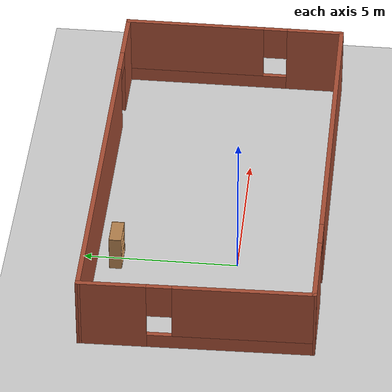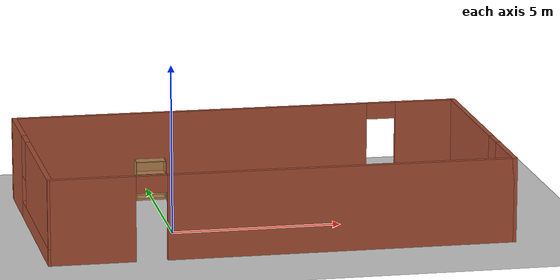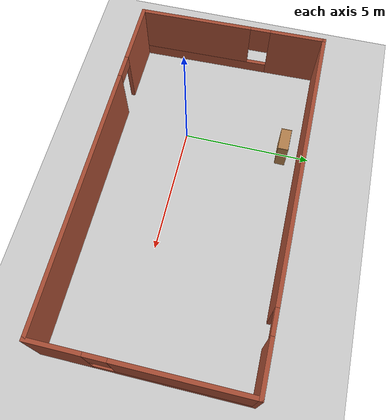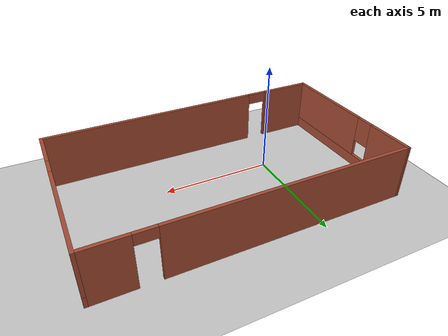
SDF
<sdf version="1.7">
 <world name="default">
  <light name="sun" type="directional">
   <pose>0 0 10 0 -0 0</pose>
   <diffuse>0.8 0.8 0.8 1</diffuse>
   <specular>0.2 0.2 0.2 1</specular>
   <attenuation>
    <range>1000</range>
    <constant>0.9</constant>
    <linear>0.01</linear>
    <quadratic>0.001</quadratic>
   </attenuation>
   <direction>-0.5 0.1 -0.9</direction>
   <spot><inner_angle>0</inner_angle><outer_angle>0</outer_angle><falloff>0</falloff></spot>
  </light>
  <model name="ground_plane">
   <static>1</static>
   <link name="link">
    <collision name="collision">
     <geometry><plane><normal>0 0 1</normal><size>100 100</size></plane></geometry>
     <surface>
      <contact><collide_bitmask>65535</collide_bitmask></contact>
      <friction><ode><mu>100</mu><mu2>50</mu2></ode></friction>
     </surface>
    </collision>
    <visual name="visual">
     <cast_shadows>0</cast_shadows>
     <geometry><plane><normal>0 0 1</normal><size>100 100</size></plane></geometry>
     <material>
      <script><uri>file://media/materials/scripts/gazebo.material</uri><name>Gazebo/Grey</name></script>
     </material>
    </visual>
   </link>
  </model>
  <gravity>0 0 -9.8</gravity>
  <magnetic_field>6e-06 2.3e-05 -4.2e-05</magnetic_field>
  <atmosphere type="adiabatic"/>
  <physics type="ode">
   <max_step_size>0.001</max_step_size>
   <real_time_factor>1</real_time_factor>
   <real_time_update_rate>1000</real_time_update_rate>
  </physics>
  <scene><ambient>0.4 0.4 0.4 1</ambient><background>0.7 0.7 0.7 1</background><shadows>1</shadows></scene>
  <audio><device>default</device></audio>
  <spherical_coordinates>
   <surface_model>EARTH_WGS84</surface_model>
   <latitude_deg>0</latitude_deg>
   <longitude_deg>0</longitude_deg>
   <elevation>0</elevation>
   <heading_deg>0</heading_deg>
  </spherical_coordinates>
  <model name="bookshelf">
   <static>1</static>
   <link name="link">
    <inertial><mass>1</mass></inertial>
    <collision name="back">
     <pose>0 0.005 0.6 0 -0 0</pose>
     <geometry><box><size>0.9 0.01 1.2</size></box></geometry>
    </collision>
    <visual name="visual1">
     <pose>0 0.005 0.6 0 -0 0</pose>
     <geometry><box><size>0.9 0.01 1.2</size></box></geometry>
     <material>
      <script><uri>file://media/materials/scripts/gazebo.material</uri><name>Gazebo/Wood</name></script>
     </material>
    </visual>
    <collision name="left_side">
     <pose>0.45 -0.195 0.6 0 -0 0</pose>
     <geometry><box><size>0.02 0.4 1.2</size></box></geometry>
    </collision>
    <visual name="visual2">
     <pose>0.45 -0.195 0.6 0 -0 0</pose>
     <geometry><box><size>0.02 0.4 1.2</size></box></geometry>
     <material>
      <script><uri>file://media/materials/scripts/gazebo.material</uri><name>Gazebo/Wood</name></script>
     </material>
    </visual>
    <collision name="right_side">
     <pose>-0.45 -0.195 0.6 0 -0 0</pose>
     <geometry><box><size>0.02 0.4 1.2</size></box></geometry>
    </collision>
    <visual name="visual3">
     <pose>-0.45 -0.195 0.6 0 -0 0</pose>
     <geometry><box><size>0.02 0.4 1.2</size></box></geometry>
     <material>
      <script><uri>file://media/materials/scripts/gazebo.material</uri><name>Gazebo/Wood</name></script>
     </material>
    </visual>
    <collision name="bottom">
     <pose>0 -0.195 0.03 0 -0 0</pose>
     <geometry><box><size>0.88 0.4 0.06</size></box></geometry>
    </collision>
    <visual name="visual4">
     <pose>0 -0.195 0.03 0 -0 0</pose>
     <geometry><box><size>0.88 0.4 0.06</size></box></geometry>
     <material>
      <script><uri>file://media/materials/scripts/gazebo.material</uri><name>Gazebo/Wood</name></script>
     </material>
    </visual>
    <collision name="top">
     <pose>0 -0.195 1.19 0 -0 0</pose>
     <geometry><box><size>0.88 0.4 0.02</size></box></geometry>
    </collision>
    <visual name="visual5">
     <pose>0 -0.195 1.19 0 -0 0</pose>
     <geometry><box><size>0.88 0.4 0.02</size></box></geometry>
     <material>
      <script><uri>file://media/materials/scripts/gazebo.material</uri><name>Gazebo/Wood</name></script>
     </material>
    </visual>
    <collision name="low_shelf">
     <pose>0 -0.195 0.43 0 -0 0</pose>
     <geometry><box><size>0.88 0.4 0.02</size></box></geometry>
    </collision>
    <visual name="visual6">
     <pose>0 -0.195 0.43 0 -0 0</pose>
     <geometry><box><size>0.88 0.4 0.02</size></box></geometry>
     <material>
      <script><uri>file://media/materials/scripts/gazebo.material</uri><name>Gazebo/Wood</name></script>
     </material>
    </visual>
    <collision name="high_shelf">
     <pose>0 -0.195 0.8 0 -0 0</pose>
     <geometry><box><size>0.88 0.4 0.02</size></box></geometry>
    </collision>
    <visual name="visual7">
     <pose>0 -0.195 0.8 0 -0 0</pose>
     <geometry><box><size>0.88 0.4 0.02</size></box></geometry>
     <material>
      <script><uri>file://media/materials/scripts/gazebo.material</uri><name>Gazebo/Wood</name></script>
     </material>
    </visual>
   </link>
   <pose>-0.039505 4.10756 0 0 -0 0</pose>
  </model>
  <model name="beer">
   <link name="link">
    <pose>0 0 0.115 0 -0 0</pose>
    <inertial>
     <mass>0.39</mass>
     <inertia><ixx>0.00058</ixx><ixy>0</ixy><ixz>0</ixz><iyy>0.00058</iyy><iyz>0</iyz><izz>0.00019</izz></inertia>
    </inertial>
    <collision name="collision">
     <geometry><cylinder><radius>0.055</radius><length>0.23</length></cylinder></geometry>
    </collision>
    <visual name="visual">
     <geometry><cylinder><radius>0.055</radius><length>0.23</length></cylinder></geometry>
     <material>
      <script>
       <uri>model://beer/materials/scripts</uri>
       <uri>model://beer/materials/textures</uri>
       <name>Beer/Diffuse</name>
      </script>
     </material>
    </visual>
   </link>
   <pose>-0.151651 3.807 0.440002 2.7e-05 1.7e-05 0.000711</pose>
  </model>
  <model name="Test">
   <pose>2.74014 0.95241 0 0 -0 0</pose>
   <link name="Wall_2">
    <pose>0.025757 -3.675 0 0 -0 0</pose>
    <visual name="Wall_2_Visual_0">
     <pose>-5.4921 0 1.25 0 -0 0</pose>
     <geometry><box><size>2.51579 0.15 2.5</size></box></geometry>
     <material>
      <script><uri>file://media/materials/scripts/gazebo.material</uri><name>Gazebo/Bricks</name></script>
      <ambient>1 1 1 1</ambient>
     </material>
     <meta><layer>0</layer></meta>
    </visual>
    <collision name="Wall_2_Collision_0">
     <geometry><box><size>2.51579 0.15 2.5</size></box></geometry>
     <pose>-5.4921 0 1.25 0 -0 0</pose>
    </collision>
    <visual name="Wall_2_Visual_1">
     <pose>1.70789 0 1.25 0 -0 0</pose>
     <geometry><box><size>10.0842 0.15 2.5</size></box></geometry>
     <material>
      <script><uri>file://media/materials/scripts/gazebo.material</uri><name>Gazebo/Bricks</name></script>
      <ambient>1 1 1 1</ambient>
     </material>
     <meta><layer>0</layer></meta>
    </visual>
    <collision name="Wall_2_Collision_1">
     <geometry><box><size>10.0842 0.15 2.5</size></box></geometry>
     <pose>1.70789 0 1.25 0 -0 0</pose>
    </collision>
    <visual name="Wall_2_Visual_2">
     <pose>-3.78421 0 2.25 0 -0 0</pose>
     <geometry><box><size>0.9 0.15 0.5</size></box></geometry>
     <material>
      <script><uri>file://media/materials/scripts/gazebo.material</uri><name>Gazebo/Bricks</name></script>
      <ambient>1 1 1 1</ambient>
     </material>
     <meta><layer>0</layer></meta>
    </visual>
    <collision name="Wall_2_Collision_2">
     <geometry><box><size>0.9 0.15 0.5</size></box></geometry>
     <pose>-3.78421 0 2.25 0 -0 0</pose>
    </collision>
   </link>
   <link name="Wall_5">
    <pose>6.80076 -0 0 0 -0 1.5708</pose>
    <visual name="Wall_5_Visual_0">
     <pose>-2.779 0 1.25 0 -0 0</pose>
     <geometry><box><size>1.942 0.15 2.5</size></box></geometry>
     <material>
      <script><uri>file://media/materials/scripts/gazebo.material</uri><name>Gazebo/Bricks</name></script>
      <ambient>1 1 1 1</ambient>
     </material>
     <meta><layer>0</layer></meta>
    </visual>
    <collision name="Wall_5_Collision_0">
     <geometry><box><size>1.942 0.15 2.5</size></box></geometry>
     <pose>-2.779 0 1.25 0 -0 0</pose>
    </collision>
    <visual name="Wall_5_Visual_1">
     <pose>0.971 0 0.25 0 -0 0</pose>
     <geometry><box><size>5.558 0.15 0.5</size></box></geometry>
     <material>
      <script><uri>file://media/materials/scripts/gazebo.material</uri><name>Gazebo/Bricks</name></script>
      <ambient>1 1 1 1</ambient>
     </material>
     <meta><layer>0</layer></meta>
    </visual>
    <collision name="Wall_5_Collision_1">
     <geometry><box><size>5.558 0.15 0.5</size></box></geometry>
     <pose>0.971 0 0.25 0 -0 0</pose>
    </collision>
    <visual name="Wall_5_Visual_2">
     <pose>1.371 0 1.5 0 -0 0</pose>
     <geometry><box><size>4.758 0.15 2</size></box></geometry>
     <material>
      <script><uri>file://media/materials/scripts/gazebo.material</uri><name>Gazebo/Bricks</name></script>
      <ambient>1 1 1 1</ambient>
     </material>
     <meta><layer>0</layer></meta>
    </visual>
    <collision name="Wall_5_Collision_2">
     <geometry><box><size>4.758 0.15 2</size></box></geometry>
     <pose>1.371 0 1.5 0 -0 0</pose>
    </collision>
    <visual name="Wall_5_Visual_3">
     <pose>-1.408 0 1.9 0 -0 0</pose>
     <geometry><box><size>0.8 0.15 1.2</size></box></geometry>
     <material>
      <script><uri>file://media/materials/scripts/gazebo.material</uri><name>Gazebo/Bricks</name></script>
      <ambient>1 1 1 1</ambient>
     </material>
     <meta><layer>0</layer></meta>
    </visual>
    <collision name="Wall_5_Collision_3">
     <geometry><box><size>0.8 0.15 1.2</size></box></geometry>
     <pose>-1.408 0 1.9 0 -0 0</pose>
    </collision>
   </link>
   <link name="Wall_6">
    <pose>0.000757 3.675 0 0 -0 3.14159</pose>
    <visual name="Wall_6_Visual_0">
     <pose>-5.91966 0 1.25 0 -0 0</pose>
     <geometry><box><size>1.91067 0.15 2.5</size></box></geometry>
     <material>
      <script><uri>file://media/materials/scripts/gazebo.material</uri><name>Gazebo/Bricks</name></script>
      <ambient>1 1 1 1</ambient>
     </material>
     <meta><layer>0</layer></meta>
    </visual>
    <collision name="Wall_6_Collision_0">
     <geometry><box><size>1.91067 0.15 2.5</size></box></geometry>
     <pose>-5.91966 0 1.25 0 -0 0</pose>
    </collision>
    <visual name="Wall_6_Visual_1">
     <pose>1.40534 0 1.25 0 -0 0</pose>
     <geometry><box><size>10.9393 0.15 2.5</size></box></geometry>
     <material>
      <script><uri>file://media/materials/scripts/gazebo.material</uri><name>Gazebo/Bricks</name></script>
      <ambient>1 1 1 1</ambient>
     </material>
     <meta><layer>0</layer></meta>
    </visual>
    <collision name="Wall_6_Collision_1">
     <geometry><box><size>10.9393 0.15 2.5</size></box></geometry>
     <pose>1.40534 0 1.25 0 -0 0</pose>
    </collision>
    <visual name="Wall_6_Visual_2">
     <pose>-4.51433 0 2.25 0 -0 0</pose>
     <geometry><box><size>0.9 0.15 0.5</size></box></geometry>
     <material>
      <script><uri>file://media/materials/scripts/gazebo.material</uri><name>Gazebo/Bricks</name></script>
      <ambient>1 1 1 1</ambient>
     </material>
     <meta><layer>0</layer></meta>
    </visual>
    <collision name="Wall_6_Collision_2">
     <geometry><box><size>0.9 0.15 0.5</size></box></geometry>
     <pose>-4.51433 0 2.25 0 -0 0</pose>
    </collision>
   </link>
   <link name="Wall_7">
    <pose>-6.72424 -0 0 0 -0 -1.55039</pose>
    <visual name="Wall_7_Visual_0">
     <pose>-2.64708 0 1.25 0 -0 0</pose>
     <geometry><box><size>2.20737 0.15 2.5</size></box></geometry>
     <material>
      <script><uri>file://media/materials/scripts/gazebo.material</uri><name>Gazebo/Bricks</name></script>
      <ambient>1 1 1 1</ambient>
     </material>
     <meta><layer>0</layer></meta>
    </visual>
    <collision name="Wall_7_Collision_0">
     <geometry><box><size>2.20737 0.15 2.5</size></box></geometry>
     <pose>-2.64708 0 1.25 0 -0 0</pose>
    </collision>
    <visual name="Wall_7_Visual_1">
     <pose>1.10368 0 0.25 0 -0 0</pose>
     <geometry><box><size>5.29416 0.15 0.5</size></box></geometry>
     <material>
      <script><uri>file://media/materials/scripts/gazebo.material</uri><name>Gazebo/Bricks</name></script>
      <ambient>1 1 1 1</ambient>
     </material>
     <meta><layer>0</layer></meta>
    </visual>
    <collision name="Wall_7_Collision_1">
     <geometry><box><size>5.29416 0.15 0.5</size></box></geometry>
     <pose>1.10368 0 0.25 0 -0 0</pose>
    </collision>
    <visual name="Wall_7_Visual_2">
     <pose>1.50368 0 1.5 0 -0 0</pose>
     <geometry><box><size>4.49416 0.15 2</size></box></geometry>
     <material>
      <script><uri>file://media/materials/scripts/gazebo.material</uri><name>Gazebo/Bricks</name></script>
      <ambient>1 1 1 1</ambient>
     </material>
     <meta><layer>0</layer></meta>
    </visual>
    <collision name="Wall_7_Collision_2">
     <geometry><box><size>4.49416 0.15 2</size></box></geometry>
     <pose>1.50368 0 1.5 0 -0 0</pose>
    </collision>
    <visual name="Wall_7_Visual_3">
     <pose>-1.1434 0 1.9 0 -0 0</pose>
     <geometry><box><size>0.8 0.15 1.2</size></box></geometry>
     <material>
      <script><uri>file://media/materials/scripts/gazebo.material</uri><name>Gazebo/Bricks</name></script>
      <ambient>1 1 1 1</ambient>
     </material>
     <meta><layer>0</layer></meta>
    </visual>
    <collision name="Wall_7_Collision_3">
     <geometry><box><size>0.8 0.15 1.2</size></box></geometry>
     <pose>-1.1434 0 1.9 0 -0 0</pose>
    </collision>
   </link>
   <static>1</static>
  </model>
  <light name="user_spot_light_0" type="spot">
   <pose>-0.175884 3.90225 1 0 -0 0</pose>
   <diffuse>0.5 0.5 0.5 1</diffuse>
   <specular>0.1 0.1 0.1 1</specular>
   <direction>0 0 -1</direction>
   <attenuation>
    <range>20</range>
    <constant>0.5</constant>
    <linear>0.01</linear>
    <quadratic>0.001</quadratic>
   </attenuation>
   <cast_shadows>0</cast_shadows>
   <spot><inner_angle>0.6</inner_angle><outer_angle>1</outer_angle><falloff>1</falloff></spot>
  </light>
 </world>
</sdf>
